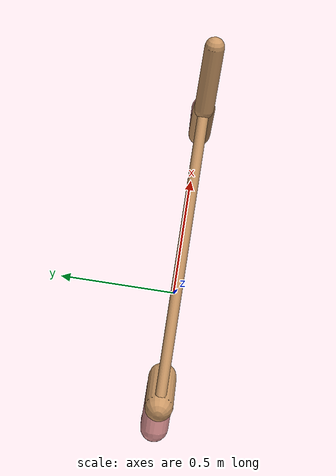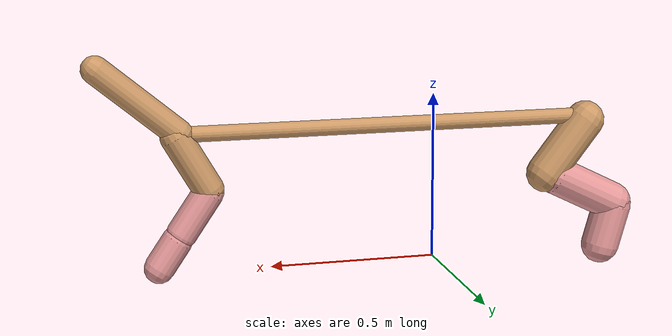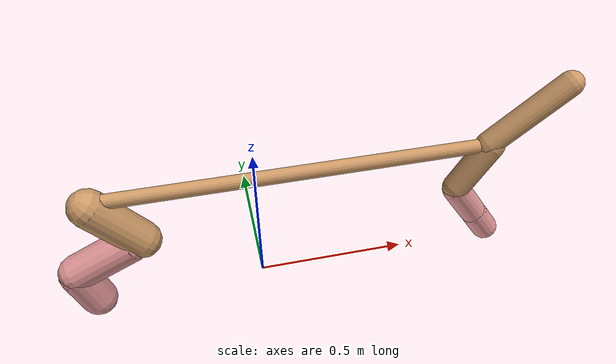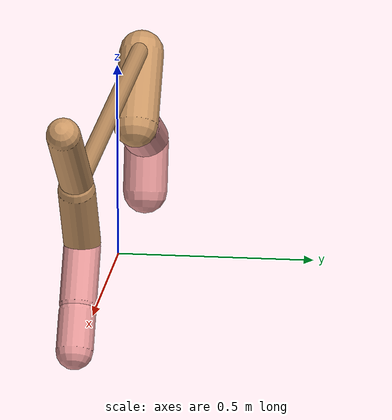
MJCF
<mujoco model="cheetah">
  <compiler angle="radian" coordinate="local" inertiafromgeom="true" settotalmass="14" />
  <default>
    <joint armature=".1" damping=".01" limited="true" solimplimit="0 .8 .03" solreflimit=".02 1" stiffness="8" />
    <geom conaffinity="0" condim="3" contype="1" friction="0.8 .1 .1" rgba="0.8 0.6 .4 1" solimp="0.0 0.8 0.01" solref="0.02 1" />
    <motor ctrllimited="true" ctrlrange="-1 1" />
  </default>
  <size nstack="300000" nuser_geom="1" />
  <option gravity="0 0 -9.81" timestep="0.01" />
  <worldbody>
    <body name="torso" pos="0.0 0.0 0.41319999999999996">
      <joint armature="0" axis="1 0 0" damping="0" limited="false" name="ignorex" pos="0 0 0" stiffness="0" type="slide" />
      <joint armature="0" axis="0 0 1" damping="0" limited="false" name="ignorez" pos="0 0 0" stiffness="0" type="slide" />
      <joint armature="0" axis="0 1 0" damping="0" limited="false" name="ignorey" pos="0 0 0" stiffness="0" type="hinge" />
      <geom fromto="-0.5 0.0 0.0 0.7740534323485776 0.0 0.0" name="torso" size="0.02338771388373293" type="capsule" />
      <geom axisangle="0 1 0 .87" name="head" pos="0.8740534323485777 0.0 0.1" size="0.04086717912850051 0.15" type="capsule" />

      <body name="bthigh" pos="-.5 0 0">
        <joint axis="0 1 0" damping="6" name="bthigh" pos="0 0 0" range="-.52 1.05" stiffness="240" type="hinge" />
        <geom axisangle="0 1 0 -3.8" name="bthigh" pos="0.07394382190868808 0.0 -0.09612696848129451" size="0.05903096355017998 0.10226469046568891" type="capsule" />
        <body name="bshin" pos="0.10788764381737614 0.0 -0.182253936962589">
          <joint axis="0 1 0" damping="4.5" name="bshin" pos="0 0 0" range="-.785 .785" stiffness="180" type="hinge" />
          <geom axisangle="0 1 0 -2.03" name="bshin" pos="-0.10045832117591126 0.0 -0.05022916058795563" rgba="0.9 0.6 0.6 1" size="0.05903096355017998 0.1057910591024368" type="capsule" />
          <body name="bfoot" pos="-0.20091664235182252 0.0 -0.10045832117591126">
            <joint axis="0 1 0" damping="3" name="bfoot" pos="0 0 0" range="-.4 .785" stiffness="120" type="hinge" />
            <geom axisangle="0 1 0 -.27" name="bfoot" pos="0.021814227128919866 0.0 -0.07053266771684091" rgba="0.9 0.6 0.6 1" size="0.05903096355017998 0.0662957303708604" type="capsule" />
            <inertial mass="10" />
          </body>
        </body>
      </body>
      <body name="fthigh" pos="0.7740534323485777 0.0 0.0">
        <joint axis="0 1 0" damping="4.5" name="fthigh" pos="0 0 0" range="-1.5 0.8" stiffness="180" type="hinge" />
        <geom axisangle="0 1 0 .52" name="fthigh" pos="-0.04989554608158897 0.0 -0.0855352218541525" size="0.045598533842015856 0.0931" type="capsule" />
        <body name="fshin" pos="-0.09979109216317794 0.0 -0.171070443708305">
          <joint axis="0 1 0" damping="3" name="fshin" pos="0 0 0" range="-1.2 1.1" stiffness="120" type="hinge" />
          <geom axisangle="0 1 0 -.6" name="fshin" pos="0.046381400387749405 0.0 -0.06422040053688378" rgba="0.9 0.6 0.6 1" size="0.045598533842015856 0.07419999999999999" type="capsule" />
          <body name="ffoot" pos="0.09276280077549881 0.0 -0.12844080107376757">
            <joint axis="0 1 0" damping="1.5" name="ffoot" pos="0 0 0" range="-3.1 -0.3" stiffness="60" type="hinge" />
            <geom axisangle="0 1 0 -.6" name="ffoot" pos="0.033644090582416526 0.0 -0.05233525201709238" rgba="0.9 0.6 0.6 1" size="0.045598533842015856 0.049" type="capsule" />
            <inertial mass="10" />
          </body>
        </body>
      </body>
    </body>
  </worldbody>
  <actuator>
    <motor gear="120" joint="bthigh" name="bthigh" />
    <motor gear="90" joint="bshin" name="bshin" />
    <motor gear="60" joint="bfoot" name="bfoot" />
    <motor gear="120" joint="fthigh" name="fthigh" />
    <motor gear="60" joint="fshin" name="fshin" />
    <motor gear="30" joint="ffoot" name="ffoot" />
  </actuator>
</mujoco>
